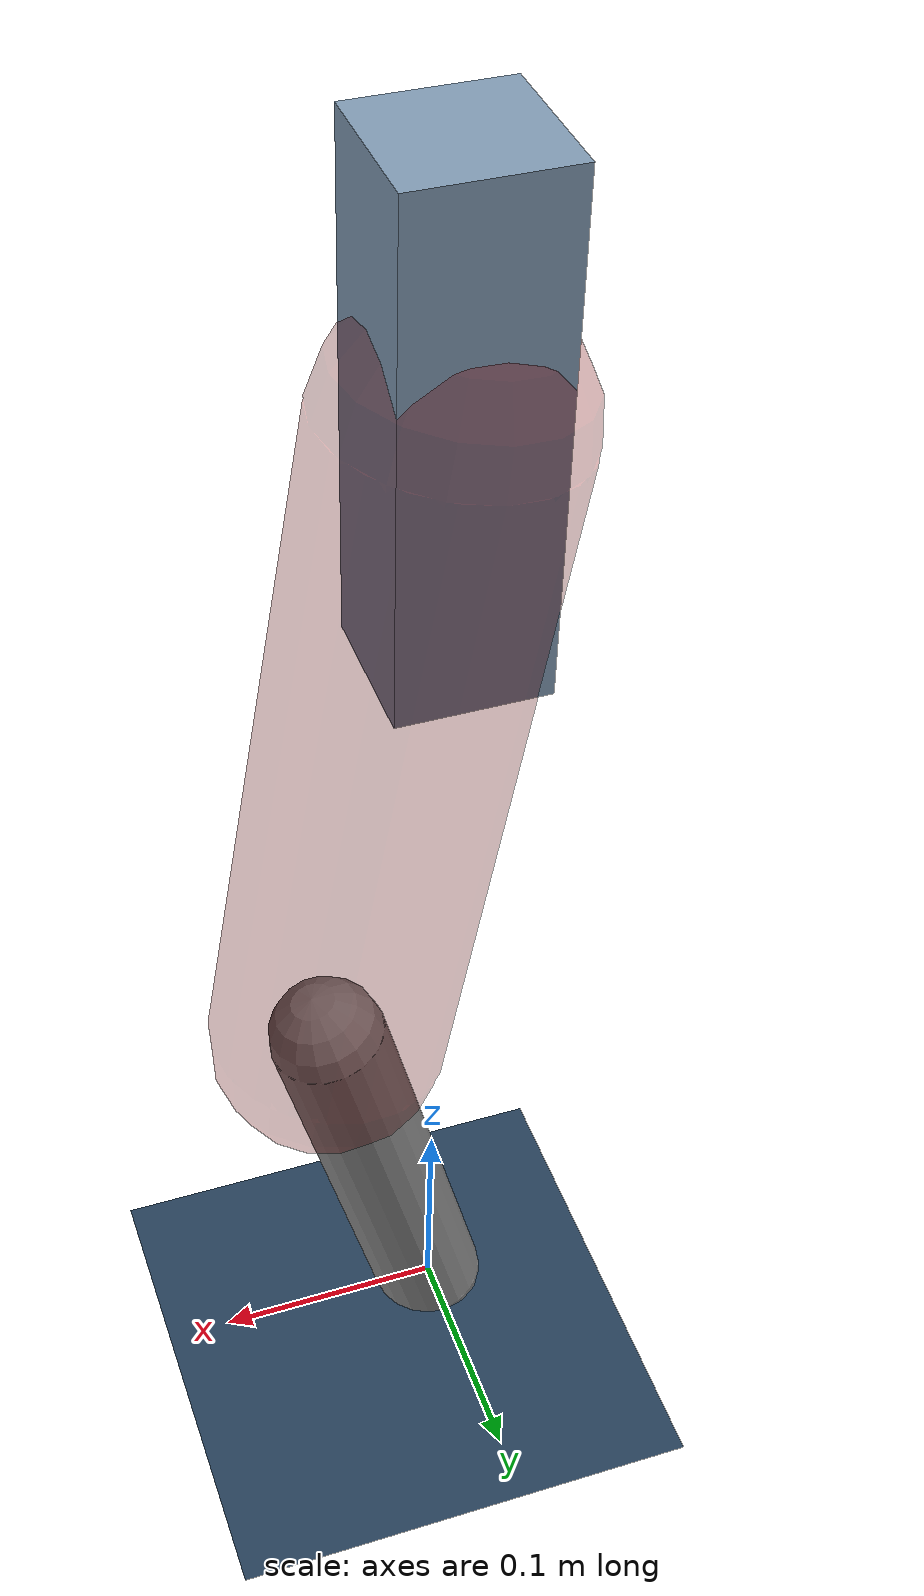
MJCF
<mujoco model="Hopper2D">
	<compiler inertiafromgeom="true" angle="radian" />
	<option timestep="0.001" integrator="implicit" cone="elliptic" solver="Newton" tolerance="1e-10" />

	<default>
		<geom contype="1" conaffinity="1" condim="3" friction="2 0.005 0.0001" solref="0.005 1" />
		<joint limited="true" damping="0.1" />
	</default>

	<asset>
		<texture name="skybox" type="skybox" builtin="gradient" rgb1=".4 .6 .8" rgb2="0 0 0" width="800" height="800" />
		<texture name="grid" type="2d" builtin="checker" rgb1=".1 .2 .3" rgb2=".2 .3 .4" width="300" height="300" mark="edge" markrgb=".2 .3 .4" />
		<material name="ground" texture="grid" texrepeat="1 1" texuniform="true" reflectance="0.1" />
		<material name="leg" rgba="0.5 0.6 0.7 1" />
	</asset>

	<worldbody>

		<geom name="floor" type="plane" size="5 5 0.25" material="ground" />

		<light directional="false" diffuse="0.8 0.8 0.8" specular="0.3 0.3 0.3" pos="0 0 2" dir="0 0 -1" />
		<light mode="targetbodycom" target="base" directional="false" diffuse="0.8 0.8 0.8" specular="0.3 0.3 0.3" pos="0 0 2" dir="0 0 -1" />

		<camera name="fixed" pos="0 -2 1" xyaxes="1 0 0 0 0 1" />
		<camera name="tracking" mode="trackcom" pos="0 -3 1" />

		<body name="root" pos="0 0 0.4789636446084461">
			<joint name="slide_x" type="slide" axis="1 0 0" range="-100 100" />
			<joint name="slide_z" type="slide" axis="0 0 1" range="0 10" />

			<body name="base" pos="0 0 0">
				<geom name="torso" type="box" size="0.03 0.03 0.1" mass="2.176" material="leg" />

				<body name="link1" pos="0 0 0" euler="0 1.4057745589322372 0">
					<joint type="hinge" axis="0 -1 0" pos="0 0 0" name="hinge1" limited="true" range="-3.14 3.14" stiffness="0" damping="0.1" />
					<geom name="thigh" type="capsule" fromto="0 0 0 0.29318999671474605 0 0" size="0.05" rgba="0.5 0 0 0.3" mass="0.9704129911298144" />

					<body name="link2" pos="0.29318999671474605 0 0" euler="0 0.41358946379601697 0">
						<joint type="hinge" axis="0 -1 0" pos="0 0 0" name="hinge2" limited="true" range="-3.14 3.14" stiffness="0" damping="0.1" />
						<geom name="shank" type="capsule" fromto="0 0 0 0.19577364789370008 0 0" size="0.025" mass="0.3973189183149601" />

					</body>
				</body>
			</body>
		</body>
	</worldbody>

	<actuator>
		<motor name="torque1" joint="hinge1" ctrlrange="-65.78775703789117 65.78775703789117" ctrllimited="true" gear="1" />
		<motor name="torque2" joint="hinge2" ctrlrange="-81.98949182039011 81.98949182039011" ctrllimited="true" gear="1" />
	</actuator>
</mujoco>
